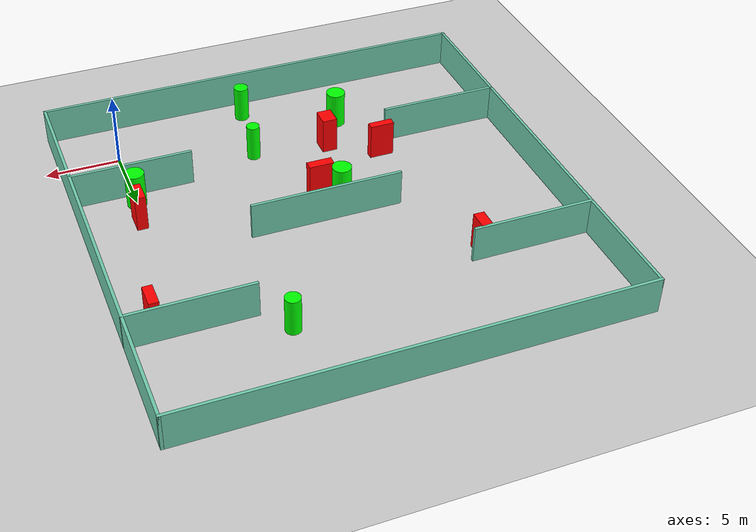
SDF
<sdf version="1.7">
 <world name="default">
  <light name="sun" type="directional">
   <pose>0 0 10 0 -0 0</pose>
   <diffuse>0.8 0.8 0.8 1</diffuse>
   <specular>0.2 0.2 0.2 1</specular>
   <attenuation>
    <range>1000</range>
    <constant>0.9</constant>
    <linear>0.01</linear>
    <quadratic>0.001</quadratic>
   </attenuation>
   <direction>-0.5 0.1 -0.9</direction>
   <spot><inner_angle>0</inner_angle><outer_angle>0</outer_angle><falloff>0</falloff></spot>
  </light>
  <model name="ground_plane">
   <static>1</static>
   <link name="link">
    <collision name="collision">
     <geometry><plane><normal>0 0 1</normal><size>100 100</size></plane></geometry>
     <surface>
      <contact><collide_bitmask>65535</collide_bitmask></contact>
      <friction><ode><mu>100</mu><mu2>50</mu2></ode></friction>
     </surface>
    </collision>
    <visual name="visual">
     <cast_shadows>0</cast_shadows>
     <geometry><plane><normal>0 0 1</normal><size>100 100</size></plane></geometry>
     <material>
      <script><uri>file://media/materials/scripts/gazebo.material</uri><name>Gazebo/Grey</name></script>
     </material>
    </visual>
   </link>
  </model>
  <gravity>0 0 -9.8</gravity>
  <magnetic_field>6e-06 2.3e-05 -4.2e-05</magnetic_field>
  <atmosphere type="adiabatic"/>
  <physics type="ode">
   <max_step_size>0.001</max_step_size>
   <real_time_factor>1</real_time_factor>
   <real_time_update_rate>1000</real_time_update_rate>
  </physics>
  <scene><ambient>0.4 0.4 0.4 1</ambient><background>0.7 0.7 0.7 1</background><shadows>1</shadows></scene>
  <spherical_coordinates>
   <surface_model>EARTH_WGS84</surface_model>
   <latitude_deg>0</latitude_deg>
   <longitude_deg>0</longitude_deg>
   <elevation>0</elevation>
   <heading_deg>0</heading_deg>
  </spherical_coordinates>
  <model name="my_base_walls">
   <link name="Wall_10">
    <collision name="Wall_10_Collision">
     <geometry><box><size>8.2 0.2 2.5</size></box></geometry>
     <pose>0 0 1.25 0 -0 0</pose>
    </collision>
    <visual name="Wall_10_Visual">
     <pose>0 0 1.25 0 -0 0</pose>
     <geometry><box><size>8.2 0.2 2.5</size></box></geometry>
     <material>
      <script><uri>file://media/materials/scripts/gazebo.material</uri><name>Gazebo/Grey</name></script>
      <ambient>0.435294 0.796078 0.67451 1</ambient>
     </material>
     <meta><layer>0</layer></meta>
    </visual>
    <pose>-11 -7 0 0 -0 0</pose>
   </link>
   <link name="Wall_12">
    <collision name="Wall_12_Collision">
     <geometry><box><size>8.2 0.2 2.5</size></box></geometry>
     <pose>0 0 1.25 0 -0 0</pose>
    </collision>
    <visual name="Wall_12_Visual">
     <pose>0 0 1.25 0 -0 0</pose>
     <geometry><box><size>8.2 0.2 2.5</size></box></geometry>
     <material>
      <script><uri>file://media/materials/scripts/gazebo.material</uri><name>Gazebo/Grey</name></script>
      <ambient>0.435294 0.796078 0.67451 1</ambient>
     </material>
     <meta><layer>0</layer></meta>
    </visual>
    <pose>-11 7 0 0 -0 0</pose>
   </link>
   <link name="Wall_14">
    <collision name="Wall_14_Collision">
     <geometry><box><size>8.2 0.2 2.5</size></box></geometry>
     <pose>0 0 1.25 0 -0 0</pose>
    </collision>
    <visual name="Wall_14_Visual">
     <pose>0 0 1.25 0 -0 0</pose>
     <geometry><box><size>8.2 0.2 2.5</size></box></geometry>
     <material>
      <script><uri>file://media/materials/scripts/gazebo.material</uri><name>Gazebo/Grey</name></script>
      <ambient>0.435294 0.796078 0.67451 1</ambient>
     </material>
     <meta><layer>0</layer></meta>
    </visual>
    <pose>11 7 0 0 -0 3.14159</pose>
   </link>
   <link name="Wall_16">
    <collision name="Wall_16_Collision">
     <geometry><box><size>10.2 0.2 2.5</size></box></geometry>
     <pose>0 0 1.25 0 -0 0</pose>
    </collision>
    <visual name="Wall_16_Visual">
     <pose>0 0 1.25 0 -0 0</pose>
     <geometry><box><size>10.2 0.2 2.5</size></box></geometry>
     <material>
      <script><uri>file://media/materials/scripts/gazebo.material</uri><name>Gazebo/Grey</name></script>
      <ambient>0.435294 0.796078 0.67451 1</ambient>
     </material>
     <meta><layer>0</layer></meta>
    </visual>
    <pose>0 0 0 0 -0 3.14159</pose>
   </link>
   <link name="Wall_2">
    <collision name="Wall_2_Collision">
     <geometry><box><size>30.2 0.2 2.5</size></box></geometry>
     <pose>0 0 1.25 0 -0 0</pose>
    </collision>
    <visual name="Wall_2_Visual">
     <pose>0 0 1.25 0 -0 0</pose>
     <geometry><box><size>30.2 0.2 2.5</size></box></geometry>
     <material>
      <script><uri>file://media/materials/scripts/gazebo.material</uri><name>Gazebo/Grey</name></script>
      <ambient>0.435294 0.796078 0.67451 1</ambient>
     </material>
     <meta><layer>0</layer></meta>
    </visual>
    <pose>0 -15 0 0 -0 3.14159</pose>
   </link>
   <link name="Wall_3">
    <collision name="Wall_3_Collision">
     <geometry><box><size>30.2 0.2 2.5</size></box></geometry>
     <pose>0 0 1.25 0 -0 0</pose>
    </collision>
    <visual name="Wall_3_Visual">
     <pose>0 0 1.25 0 -0 0</pose>
     <geometry><box><size>30.2 0.2 2.5</size></box></geometry>
     <material>
      <script><uri>file://media/materials/scripts/gazebo.material</uri><name>Gazebo/Grey</name></script>
      <ambient>0.435294 0.796078 0.67451 1</ambient>
     </material>
     <meta><layer>0</layer></meta>
    </visual>
    <pose>-15 0 0 0 -0 1.5708</pose>
   </link>
   <link name="Wall_4">
    <collision name="Wall_4_Collision">
     <geometry><box><size>30.2 0.2 2.5</size></box></geometry>
     <pose>0 0 1.25 0 -0 0</pose>
    </collision>
    <visual name="Wall_4_Visual">
     <pose>0 0 1.25 0 -0 0</pose>
     <geometry><box><size>30.2 0.2 2.5</size></box></geometry>
     <material>
      <script><uri>file://media/materials/scripts/gazebo.material</uri><name>Gazebo/Grey</name></script>
      <ambient>0.435294 0.796078 0.67451 1</ambient>
     </material>
     <meta><layer>0</layer></meta>
    </visual>
    <pose>0 15 0 0 -0 0</pose>
   </link>
   <link name="Wall_6">
    <collision name="Wall_6_Collision">
     <geometry><box><size>30.2 0.2 2.5</size></box></geometry>
     <pose>0 0 1.25 0 -0 0</pose>
    </collision>
    <visual name="Wall_6_Visual">
     <pose>0 0 1.25 0 -0 0</pose>
     <geometry><box><size>30.2 0.2 2.5</size></box></geometry>
     <material>
      <script><uri>file://media/materials/scripts/gazebo.material</uri><name>Gazebo/Grey</name></script>
      <ambient>0.435294 0.796078 0.67451 1</ambient>
     </material>
     <meta><layer>0</layer></meta>
    </visual>
    <pose>15 0 0 0 -0 1.5708</pose>
   </link>
   <link name="Wall_8">
    <collision name="Wall_8_Collision">
     <geometry><box><size>8.2 0.2 2.5</size></box></geometry>
     <pose>0 0 1.25 0 -0 0</pose>
    </collision>
    <visual name="Wall_8_Visual">
     <pose>0 0 1.25 0 -0 0</pose>
     <geometry><box><size>8.2 0.2 2.5</size></box></geometry>
     <material>
      <script><uri>file://media/materials/scripts/gazebo.material</uri><name>Gazebo/Grey</name></script>
      <ambient>0.435294 0.796078 0.67451 1</ambient>
     </material>
     <meta><layer>0</layer></meta>
    </visual>
    <pose>11 -7 0 0 -0 3.14159</pose>
   </link>
   <static>1</static>
   <pose>-11 11 0 0 -0 0</pose>
  </model>
  <model name="cylinder1">
   <static>1</static>
   <link name="link">
    <inertial>
     <mass>1</mass>
     <inertia><ixx>0.5</ixx><ixy>0</ixy><ixz>0</ixz><iyy>0.5</iyy><iyz>0</iyz><izz>1</izz></inertia>
    </inertial>
    <collision name="collision">
     <geometry><cylinder><radius>0.6438354721299515</radius><length>2.5</length></cylinder></geometry>
    </collision>
    <visual name="visual">
     <geometry><cylinder><radius>0.6438354721299515</radius><length>2.5</length></cylinder></geometry>
     <material>
      <ambient>0 1 0 1</ambient>
      <diffuse>0 1 0 1</diffuse>
      <specular>0.1 0.1 0.1 1</specular>
      <emissive>0 0 0 0</emissive>
     </material>
    </visual>
   </link>
   <pose>0.030852619546863025 5.096597144857279 1.25 0 0 0</pose>
  </model>
  <model name="cylinder2">
   <static>1</static>
   <link name="link">
    <inertial>
     <mass>1</mass>
     <inertia><ixx>0.5</ixx><ixy>0</ixy><ixz>0</ixz><iyy>0.5</iyy><iyz>0</iyz><izz>1</izz></inertia>
    </inertial>
    <collision name="collision">
     <geometry><cylinder><radius>0.49110711539119667</radius><length>2.5</length></cylinder></geometry>
    </collision>
    <visual name="visual">
     <geometry><cylinder><radius>0.49110711539119667</radius><length>2.5</length></cylinder></geometry>
     <material>
      <ambient>0 1 0 1</ambient>
      <diffuse>0 1 0 1</diffuse>
      <specular>0.1 0.1 0.1 1</specular>
      <emissive>0 0 0 0</emissive>
     </material>
    </visual>
   </link>
   <pose>-9.49829119409991 -2.1854170356610787 1.25 0 0 0</pose>
  </model>
  <model name="cylinder3">
   <static>1</static>
   <link name="link">
    <inertial>
     <mass>1</mass>
     <inertia><ixx>0.5</ixx><ixy>0</ixy><ixz>0</ixz><iyy>0.5</iyy><iyz>0</iyz><izz>1</izz></inertia>
    </inertial>
    <collision name="collision">
     <geometry><cylinder><radius>0.445899126002321</radius><length>2.5</length></cylinder></geometry>
    </collision>
    <visual name="visual">
     <geometry><cylinder><radius>0.445899126002321</radius><length>2.5</length></cylinder></geometry>
     <material>
      <ambient>0 1 0 1</ambient>
      <diffuse>0 1 0 1</diffuse>
      <specular>0.1 0.1 0.1 1</specular>
      <emissive>0 0 0 0</emissive>
     </material>
    </visual>
   </link>
   <pose>-8.779664662531756 2.7119190895352574 1.25 0 0 0</pose>
  </model>
  <model name="cylinder4">
   <static>1</static>
   <link name="link">
    <inertial>
     <mass>1</mass>
     <inertia><ixx>0.5</ixx><ixy>0</ixy><ixz>0</ixz><iyy>0.5</iyy><iyz>0</iyz><izz>1</izz></inertia>
    </inertial>
    <collision name="collision">
     <geometry><cylinder><radius>0.6496129578732253</radius><length>2.5</length></cylinder></geometry>
    </collision>
    <visual name="visual">
     <geometry><cylinder><radius>0.6496129578732253</radius><length>2.5</length></cylinder></geometry>
     <material>
      <ambient>0 1 0 1</ambient>
      <diffuse>0 1 0 1</diffuse>
      <specular>0.1 0.1 0.1 1</specular>
      <emissive>0 0 0 0</emissive>
     </material>
    </visual>
   </link>
   <pose>-15.505825291531968 0.7918984405704261 1.25 0 0 0</pose>
  </model>
  <model name="cylinder5">
   <static>1</static>
   <link name="link">
    <inertial>
     <mass>1</mass>
     <inertia><ixx>0.5</ixx><ixy>0</ixy><ixz>0</ixz><iyy>0.5</iyy><iyz>0</iyz><izz>1</izz></inertia>
    </inertial>
    <collision name="collision">
     <geometry><cylinder><radius>0.648821800256921</radius><length>2.5</length></cylinder></geometry>
    </collision>
    <visual name="visual">
     <geometry><cylinder><radius>0.648821800256921</radius><length>2.5</length></cylinder></geometry>
     <material>
      <ambient>0 1 0 1</ambient>
      <diffuse>0 1 0 1</diffuse>
      <specular>0.1 0.1 0.1 1</specular>
      <emissive>0 0 0 0</emissive>
     </material>
    </visual>
   </link>
   <pose>-12.70852409715707 9.185382489552577 1.25 0 0 0</pose>
  </model>
  <model name="cylinder6">
   <static>1</static>
   <link name="link">
    <inertial>
     <mass>1</mass>
     <inertia><ixx>0.5</ixx><ixy>0</ixy><ixz>0</ixz><iyy>0.5</iyy><iyz>0</iyz><izz>1</izz></inertia>
    </inertial>
    <collision name="collision">
     <geometry><cylinder><radius>0.5037552116251075</radius><length>2.5</length></cylinder></geometry>
    </collision>
    <visual name="visual">
     <geometry><cylinder><radius>0.5037552116251075</radius><length>2.5</length></cylinder></geometry>
     <material>
      <ambient>0 1 0 1</ambient>
      <diffuse>0 1 0 1</diffuse>
      <specular>0.1 0.1 0.1 1</specular>
      <emissive>0 0 0 0</emissive>
     </material>
    </visual>
   </link>
   <pose>-5.496757968889778 19.9267245663375 1.25 0 0 0</pose>
  </model>
  <model name="box1">
   <static>1</static>
   <link name="link">
    <inertial>
     <mass>1</mass>
     <inertia><ixx>0.083</ixx><ixy>0</ixy><ixz>0</ixz><iyy>0.083</iyy><iyz>0</iyz><izz>0.083</izz></inertia>
    </inertial>
    <collision name="collision">
     <geometry><box><size>1.688493164662308 0.6286779140557139 2.5</size></box></geometry>
    </collision>
    <visual name="visual">
     <geometry><box><size>1.688493164662308 0.6286779140557139 2.5</size></box></geometry>
     <material>
      <ambient>1 0 0 1</ambient>
      <diffuse>1 0 0 1</diffuse>
      <specular>0.1 0.1 0.1 1</specular>
      <emissive>0 0 0 0</emissive>
     </material>
    </visual>
    <sensor name="my_contact" type="contact">
     <contact><collision>box_collision</collision><topic>__default_topic__</topic></contact>
    </sensor>
   </link>
   <pose>-11.554461619096676 8.280720073235004 1.25 0 0 0</pose>
  </model>
  <model name="box2">
   <static>1</static>
   <link name="link">
    <inertial>
     <mass>1</mass>
     <inertia><ixx>0.083</ixx><ixy>0</ixy><ixz>0</ixz><iyy>0.083</iyy><iyz>0</iyz><izz>0.083</izz></inertia>
    </inertial>
    <collision name="collision">
     <geometry><box><size>0.7224997279416614 1.3589651073006743 2.5</size></box></geometry>
    </collision>
    <visual name="visual">
     <geometry><box><size>0.7224997279416614 1.3589651073006743 2.5</size></box></geometry>
     <material>
      <ambient>1 0 0 1</ambient>
      <diffuse>1 0 0 1</diffuse>
      <specular>0.1 0.1 0.1 1</specular>
      <emissive>0 0 0 0</emissive>
     </material>
    </visual>
    <sensor name="my_contact" type="contact">
     <contact><collision>box_collision</collision><topic>__default_topic__</topic></contact>
    </sensor>
   </link>
   <pose>-18.81776785442932 17.365447566953666 1.25 0 0 0</pose>
  </model>
  <model name="box3">
   <static>1</static>
   <link name="link">
    <inertial>
     <mass>1</mass>
     <inertia><ixx>0.083</ixx><ixy>0</ixy><ixz>0</ixz><iyy>0.083</iyy><iyz>0</iyz><izz>0.083</izz></inertia>
    </inertial>
    <collision name="collision">
     <geometry><box><size>0.6367659545121205 1.5845047745698944 2.5</size></box></geometry>
    </collision>
    <visual name="visual">
     <geometry><box><size>0.6367659545121205 1.5845047745698944 2.5</size></box></geometry>
     <material>
      <ambient>1 0 0 1</ambient>
      <diffuse>1 0 0 1</diffuse>
      <specular>0.1 0.1 0.1 1</specular>
      <emissive>0 0 0 0</emissive>
     </material>
    </visual>
    <sensor name="my_contact" type="contact">
     <contact><collision>box_collision</collision><topic>__default_topic__</topic></contact>
    </sensor>
   </link>
   <pose>2.02283474902141 16.81859495301533 1.25 0 0 0</pose>
  </model>
  <model name="box4">
   <static>1</static>
   <link name="link">
    <inertial>
     <mass>1</mass>
     <inertia><ixx>0.083</ixx><ixy>0</ixy><ixz>0</ixz><iyy>0.083</iyy><iyz>0</iyz><izz>0.083</izz></inertia>
    </inertial>
    <collision name="collision">
     <geometry><box><size>1.0047368315636582 1.262079504729507 2.5</size></box></geometry>
    </collision>
    <visual name="visual">
     <geometry><box><size>1.0047368315636582 1.262079504729507 2.5</size></box></geometry>
     <material>
      <ambient>1 0 0 1</ambient>
      <diffuse>1 0 0 1</diffuse>
      <specular>0.1 0.1 0.1 1</specular>
      <emissive>0 0 0 0</emissive>
     </material>
    </visual>
    <sensor name="my_contact" type="contact">
     <contact><collision>box_collision</collision><topic>__default_topic__</topic></contact>
    </sensor>
   </link>
   <pose>-13.887034932951568 3.320864834662723 1.25 0 0 0</pose>
  </model>
  <model name="box5">
   <static>1</static>
   <link name="link">
    <inertial>
     <mass>1</mass>
     <inertia><ixx>0.083</ixx><ixy>0</ixy><ixz>0</ixz><iyy>0.083</iyy><iyz>0</iyz><izz>0.083</izz></inertia>
    </inertial>
    <collision name="collision">
     <geometry><box><size>1.6465614714870707 0.5243009422550824 2.5</size></box></geometry>
    </collision>
    <visual name="visual">
     <geometry><box><size>1.6465614714870707 0.5243009422550824 2.5</size></box></geometry>
     <material>
      <ambient>1 0 0 1</ambient>
      <diffuse>1 0 0 1</diffuse>
      <specular>0.1 0.1 0.1 1</specular>
      <emissive>0 0 0 0</emissive>
     </material>
    </visual>
    <sensor name="my_contact" type="contact">
     <contact><collision>box_collision</collision><topic>__default_topic__</topic></contact>
    </sensor>
   </link>
   <pose>-17.01247951967745 5.465680434238127 1.25 0 0 0</pose>
  </model>
  <model name="box6">
   <static>1</static>
   <link name="link">
    <inertial>
     <mass>1</mass>
     <inertia><ixx>0.083</ixx><ixy>0</ixy><ixz>0</ixz><iyy>0.083</iyy><iyz>0</iyz><izz>0.083</izz></inertia>
    </inertial>
    <collision name="collision">
     <geometry><box><size>0.7304506417309087 1.4995933319827435 2.5</size></box></geometry>
    </collision>
    <visual name="visual">
     <geometry><box><size>0.7304506417309087 1.4995933319827435 2.5</size></box></geometry>
     <material>
      <ambient>1 0 0 1</ambient>
      <diffuse>1 0 0 1</diffuse>
      <specular>0.1 0.1 0.1 1</specular>
      <emissive>0 0 0 0</emissive>
     </material>
    </visual>
    <sensor name="my_contact" type="contact">
     <contact><collision>box_collision</collision><topic>__default_topic__</topic></contact>
    </sensor>
   </link>
   <pose>0.3305949344864416 7.077528754398097 1.25 0 0 0</pose>
  </model>
 </world>
</sdf>
